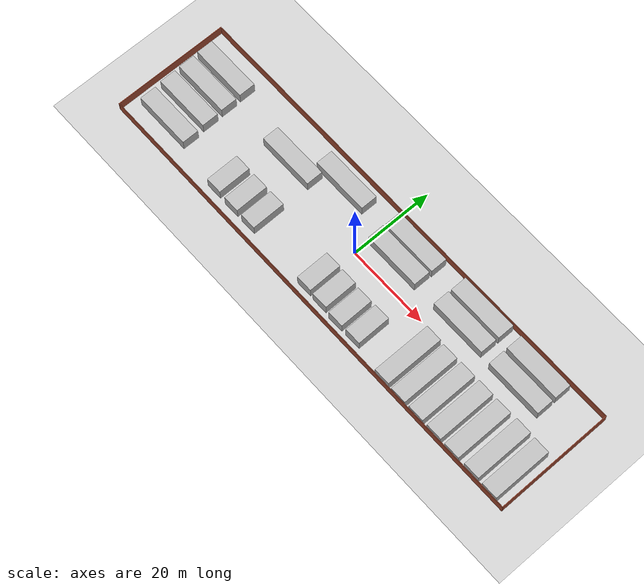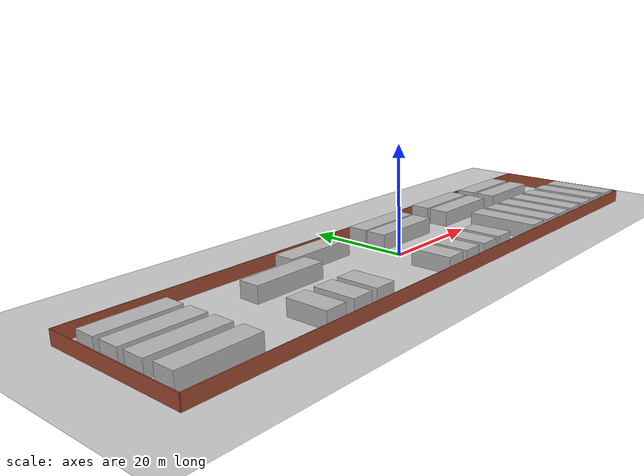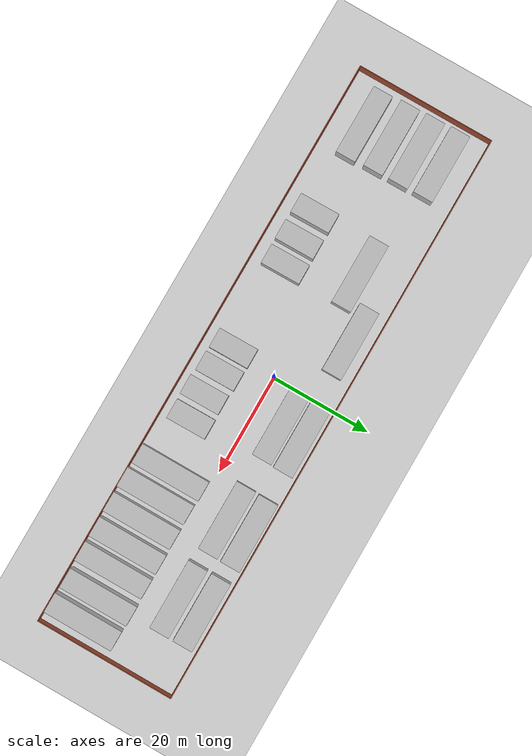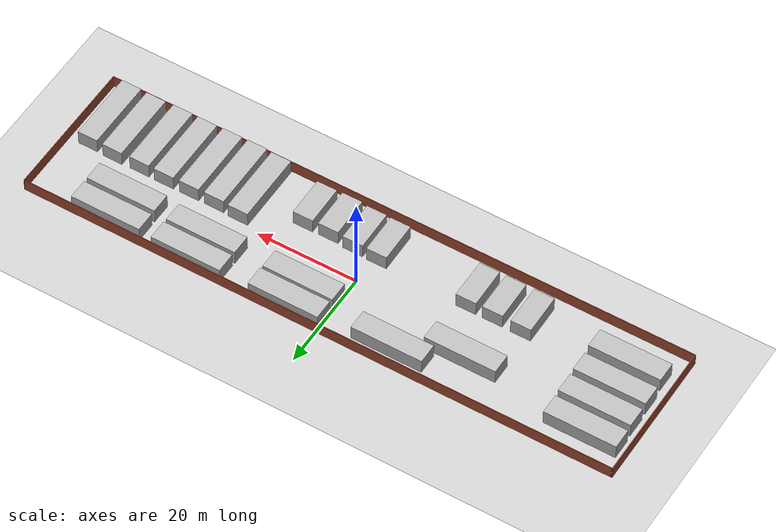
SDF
<sdf version="1.6">
 <world name="default">
  <light name="sun" type="directional">
   <pose>0 0 10 0 -0 0</pose>
   <diffuse>0.8 0.8 0.8 1</diffuse>
   <specular>0.2 0.2 0.2 1</specular>
   <attenuation>
    <range>1000</range>
    <constant>0.9</constant>
    <linear>0.01</linear>
    <quadratic>0.001</quadratic>
   </attenuation>
   <direction>-0.5 0.1 -0.9</direction>
  </light>
  <model name="ground_plane">
   <static>1</static>
   <link name="link">
    <collision name="collision">
     <geometry><plane><normal>0 0 1</normal><size>100 100</size></plane></geometry>
     <surface>
      <contact><collide_bitmask>65535</collide_bitmask></contact>
      <friction><ode><mu>100</mu><mu2>50</mu2></ode></friction>
     </surface>
    </collision>
    <visual name="visual">
     <cast_shadows>0</cast_shadows>
     <geometry><plane><normal>0 0 1</normal><size>100 100</size></plane></geometry>
     <material>
      <script><uri>file://media/materials/scripts/gazebo.material</uri><name>Gazebo/Grey</name></script>
     </material>
    </visual>
   </link>
  </model>
  <gravity>0 0 -9.8</gravity>
  <magnetic_field>6e-06 2.3e-05 -4.2e-05</magnetic_field>
  <atmosphere type="adiabatic"/>
  <physics name="default_physics" default="0" type="ode">
   <max_step_size>0.001</max_step_size>
   <real_time_factor>1</real_time_factor>
   <real_time_update_rate>1000</real_time_update_rate>
  </physics>
  <scene><ambient>0.4 0.4 0.4 1</ambient><background>0.7 0.7 0.7 1</background><shadows>1</shadows></scene>
  <audio><device>default</device></audio>
  <spherical_coordinates>
   <surface_model>EARTH_WGS84</surface_model>
   <latitude_deg>0</latitude_deg>
   <longitude_deg>0</longitude_deg>
   <elevation>0</elevation>
   <heading_deg>0</heading_deg>
  </spherical_coordinates>
  <model name="Untitled">
   <pose>0.853252 -1.0154 0 0 -0 0</pose>
   <link name="Wall_0">
    <collision name="Wall_0_Collision">
     <geometry><box><size>117.25 0.15 2.5</size></box></geometry>
     <pose>0 0 1.25 0 -0 0</pose>
    </collision>
    <visual name="Wall_0_Visual">
     <pose>0 0 1.25 0 -0 0</pose>
     <geometry><box><size>117.25 0.15 2.5</size></box></geometry>
     <material>
      <script><uri>file://media/materials/scripts/gazebo.material</uri><name>Gazebo/Bricks</name></script>
      <ambient>1 1 1 1</ambient>
     </material>
     <meta><layer>0</layer></meta>
    </visual>
    <pose>0.125001 13.925 0 0 -0 0</pose>
   </link>
   <link name="Wall_1">
    <collision name="Wall_1_Collision">
     <geometry><box><size>28 0.15 2.5</size></box></geometry>
     <pose>0 0 1.25 0 -0 0</pose>
    </collision>
    <visual name="Wall_1_Visual">
     <pose>0 0 1.25 0 -0 0</pose>
     <geometry><box><size>28 0.15 2.5</size></box></geometry>
     <material>
      <script><uri>file://media/materials/scripts/gazebo.material</uri><name>Gazebo/Bricks</name></script>
      <ambient>1 1 1 1</ambient>
     </material>
     <meta><layer>0</layer></meta>
    </visual>
    <pose>58.675 0 0 0 -0 -1.5708</pose>
   </link>
   <link name="Wall_2">
    <collision name="Wall_2_Collision">
     <geometry><box><size>117.5 0.15 2.5</size></box></geometry>
     <pose>0 0 1.25 0 -0 0</pose>
    </collision>
    <visual name="Wall_2_Visual">
     <pose>0 0 1.25 0 -0 0</pose>
     <geometry><box><size>117.5 0.15 2.5</size></box></geometry>
     <material>
      <script><uri>file://media/materials/scripts/gazebo.material</uri><name>Gazebo/Bricks</name></script>
      <ambient>1 1 1 1</ambient>
     </material>
     <meta><layer>0</layer></meta>
    </visual>
    <pose>1e-06 -13.925 0 0 -0 3.14159</pose>
   </link>
   <link name="Wall_3">
    <collision name="Wall_3_Collision">
     <geometry><box><size>28 0.15 2.5</size></box></geometry>
     <pose>0 0 1.25 0 -0 0</pose>
    </collision>
    <visual name="Wall_3_Visual">
     <pose>0 0 1.25 0 -0 0</pose>
     <geometry><box><size>28 0.15 2.5</size></box></geometry>
     <material>
      <script><uri>file://media/materials/scripts/gazebo.material</uri><name>Gazebo/Bricks</name></script>
      <ambient>1 1 1 1</ambient>
     </material>
     <meta><layer>0</layer></meta>
    </visual>
    <pose>-58.675 0 0 0 -0 1.5708</pose>
   </link>
   <static>1</static>
  </model>
  <model name="factorybox">
   <link name="link_1">
    <pose>0 0 0.1 0 -0 0</pose>
    <collision name="collision"><geometry><box><size>14 4 3</size></box></geometry></collision>
    <visual name="visual"><geometry><box><size>14 4 3</size></box></geometry></visual>
    <inertial>
     <inertia><ixx>1</ixx><ixy>0</ixy><ixz>0</ixz><iyy>1</iyy><iyz>0</iyz><izz>1</izz></inertia>
     <mass>1</mass>
    </inertial>
   </link>
   <static>0</static>
   <pose>-49.302 7.11475 1.39647 0 0.000504 0</pose>
  </model>
  <model name="factorybox_clone">
   <link name="link_1">
    <pose>0 0 0.1 0 -0 0</pose>
    <collision name="collision"><geometry><box><size>14 4 3</size></box></geometry></collision>
    <visual name="visual"><geometry><box><size>14 4 3</size></box></geometry></visual>
    <inertial>
     <inertia><ixx>1</ixx><ixy>0</ixy><ixz>0</ixz><iyy>1</iyy><iyz>0</iyz><izz>1</izz></inertia>
     <mass>1</mass>
    </inertial>
   </link>
   <static>0</static>
   <pose>-49.1334 1.95622 1.4 -2e-06 -0 5.5e-05</pose>
  </model>
  <model name="factorybox_clone_0">
   <link name="link_1">
    <pose>0 0 0.1 0 -0 0</pose>
    <collision name="collision"><geometry><box><size>14 4 3</size></box></geometry></collision>
    <visual name="visual"><geometry><box><size>14 4 3</size></box></geometry></visual>
    <inertial>
     <inertia><ixx>1</ixx><ixy>0</ixy><ixz>0</ixz><iyy>1</iyy><iyz>0</iyz><izz>1</izz></inertia>
     <mass>1</mass>
    </inertial>
   </link>
   <static>0</static>
   <pose>-48.9879 -3.26062 1.39647 0 0.000504 0</pose>
  </model>
  <model name="factorybox_clone_1">
   <link name="link_1">
    <pose>0 0 0.1 0 -0 0</pose>
    <collision name="collision"><geometry><box><size>14 4 3</size></box></geometry></collision>
    <visual name="visual"><geometry><box><size>14 4 3</size></box></geometry></visual>
    <inertial>
     <inertia><ixx>1</ixx><ixy>0</ixy><ixz>0</ixz><iyy>1</iyy><iyz>0</iyz><izz>1</izz></inertia>
     <mass>1</mass>
    </inertial>
   </link>
   <static>0</static>
   <pose>-48.6685 -8.88355 1.4 -2e-06 0 5.6e-05</pose>
  </model>
  <model name="factorybox_clone_2">
   <link name="link_1">
    <pose>0 0 0.1 0 -0 0</pose>
    <collision name="collision"><geometry><box><size>14 4 3</size></box></geometry></collision>
    <visual name="visual"><geometry><box><size>14 4 3</size></box></geometry></visual>
    <inertial>
     <inertia><ixx>1</ixx><ixy>0</ixy><ixz>0</ixz><iyy>1</iyy><iyz>0</iyz><izz>1</izz></inertia>
     <mass>1</mass>
    </inertial>
   </link>
   <static>0</static>
   <pose>-12.6746 8.86724 1.4 -2e-06 -0 5.8e-05</pose>
  </model>
  <model name="factorybox_clone_3">
   <link name="link_1">
    <pose>0 0 0.1 0 -0 0</pose>
    <collision name="collision"><geometry><box><size>14 4 3</size></box></geometry></collision>
    <visual name="visual"><geometry><box><size>14 4 3</size></box></geometry></visual>
    <inertial>
     <inertia><ixx>1</ixx><ixy>0</ixy><ixz>0</ixz><iyy>1</iyy><iyz>0</iyz><izz>1</izz></inertia>
     <mass>1</mass>
    </inertial>
   </link>
   <static>0</static>
   <pose>-24.2901 4.18581 1.4 -2e-06 -0 5.8e-05</pose>
  </model>
  <model name="factorybox_clone_4_clone_4">
   <link name="link_1">
    <pose>0 0 0.1 0 -0 0</pose>
    <collision name="collision"><geometry><box><size>14 4 3</size></box></geometry></collision>
    <visual name="visual"><geometry><box><size>14 4 3</size></box></geometry></visual>
    <inertial>
     <inertia><ixx>1</ixx><ixy>0</ixy><ixz>0</ixz><iyy>1</iyy><iyz>0</iyz><izz>1</izz></inertia>
     <mass>1</mass>
    </inertial>
   </link>
   <static>0</static>
   <pose>24.3567 -7.60977 1.4 2e-06 -0 -1.5718</pose>
  </model>
  <model name="factorybox_clone_4_clone_5">
   <link name="link_1">
    <pose>0 0 0.1 0 -0 0</pose>
    <collision name="collision"><geometry><box><size>14 4 3</size></box></geometry></collision>
    <visual name="visual"><geometry><box><size>14 4 3</size></box></geometry></visual>
    <inertial>
     <inertia><ixx>1</ixx><ixy>0</ixy><ixz>0</ixz><iyy>1</iyy><iyz>0</iyz><izz>1</izz></inertia>
     <mass>1</mass>
    </inertial>
   </link>
   <static>0</static>
   <pose>29.3788 -7.81389 1.4 2e-06 -0 -1.5718</pose>
  </model>
  <model name="factorybox_clone_4_clone_6">
   <link name="link_1">
    <pose>0 0 0.1 0 -0 0</pose>
    <collision name="collision"><geometry><box><size>14 4 3</size></box></geometry></collision>
    <visual name="visual"><geometry><box><size>14 4 3</size></box></geometry></visual>
    <inertial>
     <inertia><ixx>1</ixx><ixy>0</ixy><ixz>0</ixz><iyy>1</iyy><iyz>0</iyz><izz>1</izz></inertia>
     <mass>1</mass>
    </inertial>
   </link>
   <static>0</static>
   <pose>34.4871 -7.74396 1.4 2e-06 -0 -1.5718</pose>
  </model>
  <model name="factorybox_clone_4_clone_7">
   <link name="link_1">
    <pose>0 0 0.1 0 -0 0</pose>
    <collision name="collision"><geometry><box><size>14 4 3</size></box></geometry></collision>
    <visual name="visual"><geometry><box><size>14 4 3</size></box></geometry></visual>
    <inertial>
     <inertia><ixx>1</ixx><ixy>0</ixy><ixz>0</ixz><iyy>1</iyy><iyz>0</iyz><izz>1</izz></inertia>
     <mass>1</mass>
    </inertial>
   </link>
   <static>0</static>
   <pose>39.6474 -7.67394 1.4 2e-06 -0 -1.5718</pose>
  </model>
  <model name="factorybox_clone_4_clone_8">
   <link name="link_1">
    <pose>0 0 0.1 0 -0 0</pose>
    <collision name="collision"><geometry><box><size>14 4 3</size></box></geometry></collision>
    <visual name="visual"><geometry><box><size>14 4 3</size></box></geometry></visual>
    <inertial>
     <inertia><ixx>1</ixx><ixy>0</ixy><ixz>0</ixz><iyy>1</iyy><iyz>0</iyz><izz>1</izz></inertia>
     <mass>1</mass>
    </inertial>
   </link>
   <static>0</static>
   <pose>44.7533 -7.7145 1.39647 0 -0.000504 -1.5708</pose>
  </model>
  <model name="factorybox_clone_4_clone_9">
   <link name="link_1">
    <pose>0 0 0.1 0 -0 0</pose>
    <collision name="collision"><geometry><box><size>14 4 3</size></box></geometry></collision>
    <visual name="visual"><geometry><box><size>14 4 3</size></box></geometry></visual>
    <inertial>
     <inertia><ixx>1</ixx><ixy>0</ixy><ixz>0</ixz><iyy>1</iyy><iyz>0</iyz><izz>1</izz></inertia>
     <mass>1</mass>
    </inertial>
   </link>
   <static>0</static>
   <pose>50.3068 -7.59038 1.39647 0 -0.000504 -1.5708</pose>
  </model>
  <model name="factorybox_clone_4_clone_10">
   <link name="link_1">
    <pose>0 0 0.1 0 -0 0</pose>
    <collision name="collision"><geometry><box><size>14 4 3</size></box></geometry></collision>
    <visual name="visual"><geometry><box><size>14 4 3</size></box></geometry></visual>
    <inertial>
     <inertia><ixx>1</ixx><ixy>0</ixy><ixz>0</ixz><iyy>1</iyy><iyz>0</iyz><izz>1</izz></inertia>
     <mass>1</mass>
    </inertial>
   </link>
   <static>0</static>
   <pose>55.5196 -7.74488 1.4 2e-06 -0 -1.5718</pose>
  </model>
  <model name="factorybox_clone_2_clone">
   <link name="link_1">
    <pose>0 0 0.1 0 -0 0</pose>
    <collision name="collision"><geometry><box><size>14 4 3</size></box></geometry></collision>
    <visual name="visual"><geometry><box><size>14 4 3</size></box></geometry></visual>
    <inertial>
     <inertia><ixx>1</ixx><ixy>0</ixy><ixz>0</ixz><iyy>1</iyy><iyz>0</iyz><izz>1</izz></inertia>
     <mass>1</mass>
    </inertial>
   </link>
   <static>0</static>
   <pose>7.20445 10.0738 1.39647 0 -0.000504 0</pose>
  </model>
  <model name="factorybox_clone_2_clone_0">
   <link name="link_1">
    <pose>0 0 0.1 0 -0 0</pose>
    <collision name="collision"><geometry><box><size>14 4 3</size></box></geometry></collision>
    <visual name="visual"><geometry><box><size>14 4 3</size></box></geometry></visual>
    <inertial>
     <inertia><ixx>1</ixx><ixy>0</ixy><ixz>0</ixz><iyy>1</iyy><iyz>0</iyz><izz>1</izz></inertia>
     <mass>1</mass>
    </inertial>
   </link>
   <static>0</static>
   <pose>7.05859 5.57161 1.39647 0 -0.000504 0</pose>
  </model>
  <model name="factorybox_clone_2_clone_1">
   <link name="link_1">
    <pose>0 0 0.1 0 -0 0</pose>
    <collision name="collision"><geometry><box><size>14 4 3</size></box></geometry></collision>
    <visual name="visual"><geometry><box><size>14 4 3</size></box></geometry></visual>
    <inertial>
     <inertia><ixx>1</ixx><ixy>0</ixy><ixz>0</ixz><iyy>1</iyy><iyz>0</iyz><izz>1</izz></inertia>
     <mass>1</mass>
    </inertial>
   </link>
   <static>0</static>
   <pose>26.7372 10.3061 1.39647 0 -0.000504 0</pose>
  </model>
  <model name="factorybox_clone_2_clone_2">
   <link name="link_1">
    <pose>0 0 0.1 0 -0 0</pose>
    <collision name="collision"><geometry><box><size>14 4 3</size></box></geometry></collision>
    <visual name="visual"><geometry><box><size>14 4 3</size></box></geometry></visual>
    <inertial>
     <inertia><ixx>1</ixx><ixy>0</ixy><ixz>0</ixz><iyy>1</iyy><iyz>0</iyz><izz>1</izz></inertia>
     <mass>1</mass>
    </inertial>
   </link>
   <static>0</static>
   <pose>26.67 5.63181 1.39647 0 -0.000504 0</pose>
  </model>
  <model name="factorybox_clone_2_clone_3">
   <link name="link_1">
    <pose>0 0 0.1 0 -0 0</pose>
    <collision name="collision"><geometry><box><size>14 4 3</size></box></geometry></collision>
    <visual name="visual"><geometry><box><size>14 4 3</size></box></geometry></visual>
    <inertial>
     <inertia><ixx>1</ixx><ixy>0</ixy><ixz>0</ixz><iyy>1</iyy><iyz>0</iyz><izz>1</izz></inertia>
     <mass>1</mass>
    </inertial>
   </link>
   <static>0</static>
   <pose>43.3629 10.0126 1.39647 0 -0.000504 0</pose>
  </model>
  <model name="factorybox_clone_2_clone_4">
   <link name="link_1">
    <pose>0 0 0.1 0 -0 0</pose>
    <collision name="collision"><geometry><box><size>14 4 3</size></box></geometry></collision>
    <visual name="visual"><geometry><box><size>14 4 3</size></box></geometry></visual>
    <inertial>
     <inertia><ixx>1</ixx><ixy>0</ixy><ixz>0</ixz><iyy>1</iyy><iyz>0</iyz><izz>1</izz></inertia>
     <mass>1</mass>
    </inertial>
   </link>
   <static>0</static>
   <pose>43.3756 5.17638 1.39647 0 -0.000504 0</pose>
  </model>
  <model name="bluebox">
   <link name="link_0">
    <pose>0 0 0.1 0 -0 0</pose>
    <collision name="collision"><geometry><box><size>4 8 3</size></box></geometry></collision>
    <visual name="visual"><geometry><box><size>4 8 3</size></box></geometry></visual>
    <inertial>
     <inertia><ixx>1</ixx><ixy>0</ixy><ixz>0</ixz><iyy>1</iyy><iyz>0</iyz><izz>1</izz></inertia>
     <mass>1</mass>
    </inertial>
   </link>
   <static>0</static>
   <pose>-24.2477 -8.60667 1.4 -0 2e-06 0.00764</pose>
  </model>
  <model name="bluebox_clone">
   <link name="link_0">
    <pose>0 0 0.1 0 -0 0</pose>
    <collision name="collision"><geometry><box><size>4 8 3</size></box></geometry></collision>
    <visual name="visual"><geometry><box><size>4 8 3</size></box></geometry></visual>
    <inertial>
     <inertia><ixx>1</ixx><ixy>0</ixy><ixz>0</ixz><iyy>1</iyy><iyz>0</iyz><izz>1</izz></inertia>
     <mass>1</mass>
    </inertial>
   </link>
   <static>0</static>
   <pose>-19.0308 -8.55933 1.39978 5.5e-05 -0 0.007237</pose>
  </model>
  <model name="bluebox_clone_0">
   <link name="link_0">
    <pose>0 0 0.1 0 -0 0</pose>
    <collision name="collision"><geometry><box><size>4 8 3</size></box></geometry></collision>
    <visual name="visual"><geometry><box><size>4 8 3</size></box></geometry></visual>
    <inertial>
     <inertia><ixx>1</ixx><ixy>0</ixy><ixz>0</ixz><iyy>1</iyy><iyz>0</iyz><izz>1</izz></inertia>
     <mass>1</mass>
    </inertial>
   </link>
   <static>0</static>
   <pose>-0.935822 -9.02578 1.4 0 -0 0.00764</pose>
  </model>
  <model name="bluebox_clone_1">
   <link name="link_0">
    <pose>0 0 0.1 0 -0 0</pose>
    <collision name="collision"><geometry><box><size>4 8 3</size></box></geometry></collision>
    <visual name="visual"><geometry><box><size>4 8 3</size></box></geometry></visual>
    <inertial>
     <inertia><ixx>1</ixx><ixy>0</ixy><ixz>0</ixz><iyy>1</iyy><iyz>0</iyz><izz>1</izz></inertia>
     <mass>1</mass>
    </inertial>
   </link>
   <static>0</static>
   <pose>3.90652 -9.11712 1.4 0 -0 0.00764</pose>
  </model>
  <model name="bluebox_clone_0_clone">
   <link name="link_0">
    <pose>0 0 0.1 0 -0 0</pose>
    <collision name="collision"><geometry><box><size>4 8 3</size></box></geometry></collision>
    <visual name="visual"><geometry><box><size>4 8 3</size></box></geometry></visual>
    <inertial>
     <inertia><ixx>1</ixx><ixy>0</ixy><ixz>0</ixz><iyy>1</iyy><iyz>0</iyz><izz>1</izz></inertia>
     <mass>1</mass>
    </inertial>
   </link>
   <static>0</static>
   <pose>9.02291 -9.39401 1.4 0 -0 0.00764</pose>
  </model>
  <model name="bluebox_clone_0_clone_0">
   <link name="link_0">
    <pose>0 0 0.1 0 -0 0</pose>
    <collision name="collision"><geometry><box><size>4 8 3</size></box></geometry></collision>
    <visual name="visual"><geometry><box><size>4 8 3</size></box></geometry></visual>
    <inertial>
     <inertia><ixx>1</ixx><ixy>0</ixy><ixz>0</ixz><iyy>1</iyy><iyz>0</iyz><izz>1</izz></inertia>
     <mass>1</mass>
    </inertial>
   </link>
   <static>0</static>
   <pose>14.0972 -9.27422 1.4 0 -0 0.00764</pose>
  </model>
  <model name="bluebox_clone_0_clone_1">
   <link name="link_0">
    <pose>0 0 0.1 0 -0 0</pose>
    <collision name="collision"><geometry><box><size>4 8 3</size></box></geometry></collision>
    <visual name="visual"><geometry><box><size>4 8 3</size></box></geometry></visual>
    <inertial>
     <inertia><ixx>1</ixx><ixy>0</ixy><ixz>0</ixz><iyy>1</iyy><iyz>0</iyz><izz>1</izz></inertia>
     <mass>1</mass>
    </inertial>
   </link>
   <static>0</static>
   <pose>-29.8445 -8.55573 1.4 0 -0 0.007635</pose>
  </model>
 </world>
</sdf>
